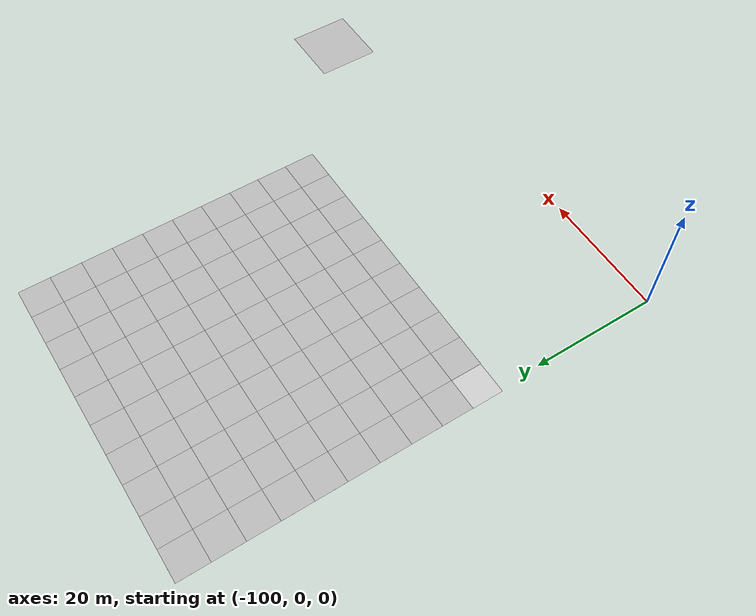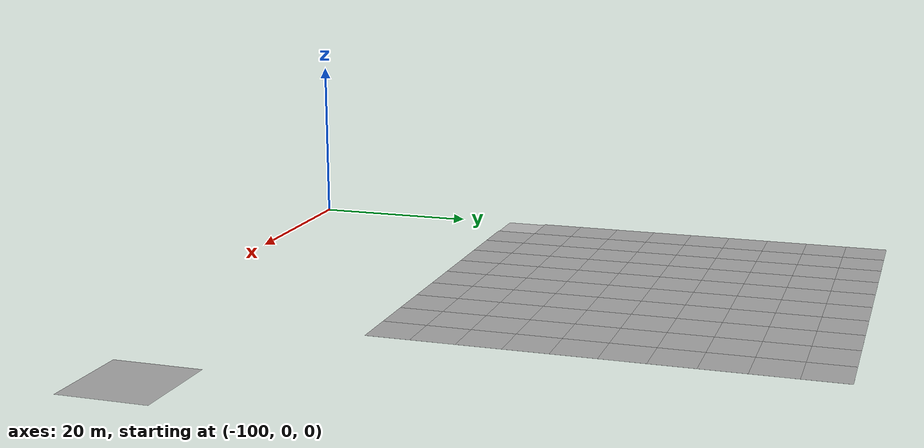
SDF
<sdf version="1.4">
 <world name="default">
  <model name="pavement_plane_5">
   <static>1</static>
   <link name="link">
    <collision name="collision">
     <geometry><plane><normal>0 0 1</normal><size>50 50</size></plane></geometry>
     <surface><friction><ode><mu>100</mu><mu2>50</mu2></ode></friction></surface>
    </collision>
    <visual name="visual_0">
     <pose>-25 -25 0 0 -0 0</pose>
     <cast_shadows>0</cast_shadows>
     <geometry><plane><normal>0 0 1</normal><size>5 5</size></plane></geometry>
     <material>
      <script>
       <uri>model://pavement_plane/materials/scripts</uri>
       <uri>model://pavement_plane/materials/textures</uri>
       <name>vrc/pavement</name>
      </script>
     </material>
    </visual>
    <visual name="visual_1">
     <pose>-20 -25 0 0 -0 0</pose>
     <cast_shadows>0</cast_shadows>
     <geometry><plane><normal>0 0 1</normal><size>5 5</size></plane></geometry>
     <material>
      <script>
       <uri>model://pavement_plane/materials/scripts</uri>
       <uri>model://pavement_plane/materials/textures</uri>
       <name>vrc/pavement</name>
      </script>
     </material>
    </visual>
    <visual name="visual_2">
     <pose>-15 -25 0 0 -0 0</pose>
     <cast_shadows>0</cast_shadows>
     <geometry><plane><normal>0 0 1</normal><size>5 5</size></plane></geometry>
     <material>
      <script>
       <uri>model://pavement_plane/materials/scripts</uri>
       <uri>model://pavement_plane/materials/textures</uri>
       <name>vrc/pavement</name>
      </script>
     </material>
    </visual>
    <visual name="visual_3">
     <pose>-10 -25 0 0 -0 0</pose>
     <cast_shadows>0</cast_shadows>
     <geometry><plane><normal>0 0 1</normal><size>5 5</size></plane></geometry>
     <material>
      <script>
       <uri>model://pavement_plane/materials/scripts</uri>
       <uri>model://pavement_plane/materials/textures</uri>
       <name>vrc/pavement</name>
      </script>
     </material>
    </visual>
    <visual name="visual_4">
     <pose>-5 -25 0 0 -0 0</pose>
     <cast_shadows>0</cast_shadows>
     <geometry><plane><normal>0 0 1</normal><size>5 5</size></plane></geometry>
     <material>
      <script>
       <uri>model://pavement_plane/materials/scripts</uri>
       <uri>model://pavement_plane/materials/textures</uri>
       <name>vrc/pavement</name>
      </script>
     </material>
    </visual>
    <visual name="visual_5">
     <pose>0 -25 0 0 -0 0</pose>
     <cast_shadows>0</cast_shadows>
     <geometry><plane><normal>0 0 1</normal><size>5 5</size></plane></geometry>
     <material>
      <script>
       <uri>model://pavement_plane/materials/scripts</uri>
       <uri>model://pavement_plane/materials/textures</uri>
       <name>vrc/pavement</name>
      </script>
     </material>
    </visual>
    <visual name="visual_6">
     <pose>5 -25 0 0 -0 0</pose>
     <cast_shadows>0</cast_shadows>
     <geometry><plane><normal>0 0 1</normal><size>5 5</size></plane></geometry>
     <material>
      <script>
       <uri>model://pavement_plane/materials/scripts</uri>
       <uri>model://pavement_plane/materials/textures</uri>
       <name>vrc/pavement</name>
      </script>
     </material>
    </visual>
    <visual name="visual_7">
     <pose>10 -25 0 0 -0 0</pose>
     <cast_shadows>0</cast_shadows>
     <geometry><plane><normal>0 0 1</normal><size>5 5</size></plane></geometry>
     <material>
      <script>
       <uri>model://pavement_plane/materials/scripts</uri>
       <uri>model://pavement_plane/materials/textures</uri>
       <name>vrc/pavement</name>
      </script>
     </material>
    </visual>
    <visual name="visual_8">
     <pose>15 -25 0 0 -0 0</pose>
     <cast_shadows>0</cast_shadows>
     <geometry><plane><normal>0 0 1</normal><size>5 5</size></plane></geometry>
     <material>
      <script>
       <uri>model://pavement_plane/materials/scripts</uri>
       <uri>model://pavement_plane/materials/textures</uri>
       <name>vrc/pavement</name>
      </script>
     </material>
    </visual>
    <visual name="visual_9">
     <pose>20 -25 0 0 -0 0</pose>
     <cast_shadows>0</cast_shadows>
     <geometry><plane><normal>0 0 1</normal><size>5 5</size></plane></geometry>
     <material>
      <script>
       <uri>model://pavement_plane/materials/scripts</uri>
       <uri>model://pavement_plane/materials/textures</uri>
       <name>vrc/pavement</name>
      </script>
     </material>
    </visual>
    <visual name="visual_10">
     <pose>-25 -20 0 0 -0 0</pose>
     <cast_shadows>0</cast_shadows>
     <geometry><plane><normal>0 0 1</normal><size>5 5</size></plane></geometry>
     <material>
      <script>
       <uri>model://pavement_plane/materials/scripts</uri>
       <uri>model://pavement_plane/materials/textures</uri>
       <name>vrc/pavement</name>
      </script>
     </material>
    </visual>
    <visual name="visual_11">
     <pose>-20 -20 0 0 -0 0</pose>
     <cast_shadows>0</cast_shadows>
     <geometry><plane><normal>0 0 1</normal><size>5 5</size></plane></geometry>
     <material>
      <script>
       <uri>model://pavement_plane/materials/scripts</uri>
       <uri>model://pavement_plane/materials/textures</uri>
       <name>vrc/pavement</name>
      </script>
     </material>
    </visual>
    <visual name="visual_12">
     <pose>-15 -20 0 0 -0 0</pose>
     <cast_shadows>0</cast_shadows>
     <geometry><plane><normal>0 0 1</normal><size>5 5</size></plane></geometry>
     <material>
      <script>
       <uri>model://pavement_plane/materials/scripts</uri>
       <uri>model://pavement_plane/materials/textures</uri>
       <name>vrc/pavement</name>
      </script>
     </material>
    </visual>
    <visual name="visual_13">
     <pose>-10 -20 0 0 -0 0</pose>
     <cast_shadows>0</cast_shadows>
     <geometry><plane><normal>0 0 1</normal><size>5 5</size></plane></geometry>
     <material>
      <script>
       <uri>model://pavement_plane/materials/scripts</uri>
       <uri>model://pavement_plane/materials/textures</uri>
       <name>vrc/pavement</name>
      </script>
     </material>
    </visual>
    <visual name="visual_14">
     <pose>-5 -20 0 0 -0 0</pose>
     <cast_shadows>0</cast_shadows>
     <geometry><plane><normal>0 0 1</normal><size>5 5</size></plane></geometry>
     <material>
      <script>
       <uri>model://pavement_plane/materials/scripts</uri>
       <uri>model://pavement_plane/materials/textures</uri>
       <name>vrc/pavement</name>
      </script>
     </material>
    </visual>
    <visual name="visual_15">
     <pose>0 -20 0 0 -0 0</pose>
     <cast_shadows>0</cast_shadows>
     <geometry><plane><normal>0 0 1</normal><size>5 5</size></plane></geometry>
     <material>
      <script>
       <uri>model://pavement_plane/materials/scripts</uri>
       <uri>model://pavement_plane/materials/textures</uri>
       <name>vrc/pavement</name>
      </script>
     </material>
    </visual>
    <visual name="visual_16">
     <pose>5 -20 0 0 -0 0</pose>
     <cast_shadows>0</cast_shadows>
     <geometry><plane><normal>0 0 1</normal><size>5 5</size></plane></geometry>
     <material>
      <script>
       <uri>model://pavement_plane/materials/scripts</uri>
       <uri>model://pavement_plane/materials/textures</uri>
       <name>vrc/pavement</name>
      </script>
     </material>
    </visual>
    <visual name="visual_17">
     <pose>10 -20 0 0 -0 0</pose>
     <cast_shadows>0</cast_shadows>
     <geometry><plane><normal>0 0 1</normal><size>5 5</size></plane></geometry>
     <material>
      <script>
       <uri>model://pavement_plane/materials/scripts</uri>
       <uri>model://pavement_plane/materials/textures</uri>
       <name>vrc/pavement</name>
      </script>
     </material>
    </visual>
    <visual name="visual_18">
     <pose>15 -20 0 0 -0 0</pose>
     <cast_shadows>0</cast_shadows>
     <geometry><plane><normal>0 0 1</normal><size>5 5</size></plane></geometry>
     <material>
      <script>
       <uri>model://pavement_plane/materials/scripts</uri>
       <uri>model://pavement_plane/materials/textures</uri>
       <name>vrc/pavement</name>
      </script>
     </material>
    </visual>
    <visual name="visual_19">
     <pose>20 -20 0 0 -0 0</pose>
     <cast_shadows>0</cast_shadows>
     <geometry><plane><normal>0 0 1</normal><size>5 5</size></plane></geometry>
     <material>
      <script>
       <uri>model://pavement_plane/materials/scripts</uri>
       <uri>model://pavement_plane/materials/textures</uri>
       <name>vrc/pavement</name>
      </script>
     </material>
    </visual>
    <visual name="visual_20">
     <pose>-25 -15 0 0 -0 0</pose>
     <cast_shadows>0</cast_shadows>
     <geometry><plane><normal>0 0 1</normal><size>5 5</size></plane></geometry>
     <material>
      <script>
       <uri>model://pavement_plane/materials/scripts</uri>
       <uri>model://pavement_plane/materials/textures</uri>
       <name>vrc/pavement</name>
      </script>
     </material>
    </visual>
    <visual name="visual_21">
     <pose>-20 -15 0 0 -0 0</pose>
     <cast_shadows>0</cast_shadows>
     <geometry><plane><normal>0 0 1</normal><size>5 5</size></plane></geometry>
     <material>
      <script>
       <uri>model://pavement_plane/materials/scripts</uri>
       <uri>model://pavement_plane/materials/textures</uri>
       <name>vrc/pavement</name>
      </script>
     </material>
    </visual>
    <visual name="visual_22">
     <pose>-15 -15 0 0 -0 0</pose>
     <cast_shadows>0</cast_shadows>
     <geometry><plane><normal>0 0 1</normal><size>5 5</size></plane></geometry>
     <material>
      <script>
       <uri>model://pavement_plane/materials/scripts</uri>
       <uri>model://pavement_plane/materials/textures</uri>
       <name>vrc/pavement</name>
      </script>
     </material>
    </visual>
    <visual name="visual_23">
     <pose>-10 -15 0 0 -0 0</pose>
     <cast_shadows>0</cast_shadows>
     <geometry><plane><normal>0 0 1</normal><size>5 5</size></plane></geometry>
     <material>
      <script>
       <uri>model://pavement_plane/materials/scripts</uri>
       <uri>model://pavement_plane/materials/textures</uri>
       <name>vrc/pavement</name>
      </script>
     </material>
    </visual>
    <visual name="visual_24">
     <pose>-5 -15 0 0 -0 0</pose>
     <cast_shadows>0</cast_shadows>
     <geometry><plane><normal>0 0 1</normal><size>5 5</size></plane></geometry>
     <material>
      <script>
       <uri>model://pavement_plane/materials/scripts</uri>
       <uri>model://pavement_plane/materials/textures</uri>
       <name>vrc/pavement</name>
      </script>
     </material>
    </visual>
    <visual name="visual_25">
     <pose>0 -15 0 0 -0 0</pose>
     <cast_shadows>0</cast_shadows>
     <geometry><plane><normal>0 0 1</normal><size>5 5</size></plane></geometry>
     <material>
      <script>
       <uri>model://pavement_plane/materials/scripts</uri>
       <uri>model://pavement_plane/materials/textures</uri>
       <name>vrc/pavement</name>
      </script>
     </material>
    </visual>
    <visual name="visual_26">
     <pose>5 -15 0 0 -0 0</pose>
     <cast_shadows>0</cast_shadows>
     <geometry><plane><normal>0 0 1</normal><size>5 5</size></plane></geometry>
     <material>
      <script>
       <uri>model://pavement_plane/materials/scripts</uri>
       <uri>model://pavement_plane/materials/textures</uri>
       <name>vrc/pavement</name>
      </script>
     </material>
    </visual>
    <visual name="visual_27">
     <pose>10 -15 0 0 -0 0</pose>
     <cast_shadows>0</cast_shadows>
     <geometry><plane><normal>0 0 1</normal><size>5 5</size></plane></geometry>
     <material>
      <script>
       <uri>model://pavement_plane/materials/scripts</uri>
       <uri>model://pavement_plane/materials/textures</uri>
       <name>vrc/pavement</name>
      </script>
     </material>
    </visual>
    <visual name="visual_28">
     <pose>15 -15 0 0 -0 0</pose>
     <cast_shadows>0</cast_shadows>
     <geometry><plane><normal>0 0 1</normal><size>5 5</size></plane></geometry>
     <material>
      <script>
       <uri>model://pavement_plane/materials/scripts</uri>
       <uri>model://pavement_plane/materials/textures</uri>
       <name>vrc/pavement</name>
      </script>
     </material>
    </visual>
    <visual name="visual_29">
     <pose>20 -15 0 0 -0 0</pose>
     <cast_shadows>0</cast_shadows>
     <geometry><plane><normal>0 0 1</normal><size>5 5</size></plane></geometry>
     <material>
      <script>
       <uri>model://pavement_plane/materials/scripts</uri>
       <uri>model://pavement_plane/materials/textures</uri>
       <name>vrc/pavement</name>
      </script>
     </material>
    </visual>
    <visual name="visual_30">
     <pose>-25 -10 0 0 -0 0</pose>
     <cast_shadows>0</cast_shadows>
     <geometry><plane><normal>0 0 1</normal><size>5 5</size></plane></geometry>
     <material>
      <script>
       <uri>model://pavement_plane/materials/scripts</uri>
       <uri>model://pavement_plane/materials/textures</uri>
       <name>vrc/pavement</name>
      </script>
     </material>
    </visual>
    <visual name="visual_31">
     <pose>-20 -10 0 0 -0 0</pose>
     <cast_shadows>0</cast_shadows>
     <geometry><plane><normal>0 0 1</normal><size>5 5</size></plane></geometry>
     <material>
      <script>
       <uri>model://pavement_plane/materials/scripts</uri>
       <uri>model://pavement_plane/materials/textures</uri>
       <name>vrc/pavement</name>
      </script>
     </material>
    </visual>
    <visual name="visual_32">
     <pose>-15 -10 0 0 -0 0</pose>
     <cast_shadows>0</cast_shadows>
     <geometry><plane><normal>0 0 1</normal><size>5 5</size></plane></geometry>
     <material>
      <script>
       <uri>model://pavement_plane/materials/scripts</uri>
       <uri>model://pavement_plane/materials/textures</uri>
       <name>vrc/pavement</name>
      </script>
     </material>
    </visual>
    <visual name="visual_33">
     <pose>-10 -10 0 0 -0 0</pose>
     <cast_shadows>0</cast_shadows>
     <geometry><plane><normal>0 0 1</normal><size>5 5</size></plane></geometry>
     <material>
      <script>
       <uri>model://pavement_plane/materials/scripts</uri>
       <uri>model://pavement_plane/materials/textures</uri>
       <name>vrc/pavement</name>
      </script>
     </material>
    </visual>
    <visual name="visual_34">
     <pose>-5 -10 0 0 -0 0</pose>
     <cast_shadows>0</cast_shadows>
     <geometry><plane><normal>0 0 1</normal><size>5 5</size></plane></geometry>
     <material>
      <script>
       <uri>model://pavement_plane/materials/scripts</uri>
       <uri>model://pavement_plane/materials/textures</uri>
       <name>vrc/pavement</name>
      </script>
     </material>
    </visual>
    <visual name="visual_35">
     <pose>0 -10 0 0 -0 0</pose>
     <cast_shadows>0</cast_shadows>
     <geometry><plane><normal>0 0 1</normal><size>5 5</size></plane></geometry>
     <material>
      <script>
       <uri>model://pavement_plane/materials/scripts</uri>
       <uri>model://pavement_plane/materials/textures</uri>
       <name>vrc/pavement</name>
      </script>
     </material>
    </visual>
    <visual name="visual_36">
     <pose>5 -10 0 0 -0 0</pose>
     <cast_shadows>0</cast_shadows>
     <geometry><plane><normal>0 0 1</normal><size>5 5</size></plane></geometry>
     <material>
      <script>
       <uri>model://pavement_plane/materials/scripts</uri>
       <uri>model://pavement_plane/materials/textures</uri>
       <name>vrc/pavement</name>
      </script>
     </material>
    </visual>
    <visual name="visual_37">
     <pose>10 -10 0 0 -0 0</pose>
     <cast_shadows>0</cast_shadows>
     <geometry><plane><normal>0 0 1</normal><size>5 5</size></plane></geometry>
     <material>
      <script>
       <uri>model://pavement_plane/materials/scripts</uri>
       <uri>model://pavement_plane/materials/textures</uri>
       <name>vrc/pavement</name>
      </script>
     </material>
    </visual>
    <visual name="visual_38">
     <pose>15 -10 0 0 -0 0</pose>
     <cast_shadows>0</cast_shadows>
     <geometry><plane><normal>0 0 1</normal><size>5 5</size></plane></geometry>
     <material>
      <script>
       <uri>model://pavement_plane/materials/scripts</uri>
       <uri>model://pavement_plane/materials/textures</uri>
       <name>vrc/pavement</name>
      </script>
     </material>
    </visual>
    <visual name="visual_39">
     <pose>20 -10 0 0 -0 0</pose>
     <cast_shadows>0</cast_shadows>
     <geometry><plane><normal>0 0 1</normal><size>5 5</size></plane></geometry>
     <material>
      <script>
       <uri>model://pavement_plane/materials/scripts</uri>
       <uri>model://pavement_plane/materials/textures</uri>
       <name>vrc/pavement</name>
      </script>
     </material>
    </visual>
    <visual name="visual_40">
     <pose>-25 -5 0 0 -0 0</pose>
     <cast_shadows>0</cast_shadows>
     <geometry><plane><normal>0 0 1</normal><size>5 5</size></plane></geometry>
     <material>
      <script>
       <uri>model://pavement_plane/materials/scripts</uri>
       <uri>model://pavement_plane/materials/textures</uri>
       <name>vrc/pavement</name>
      </script>
     </material>
    </visual>
    <visual name="visual_41">
     <pose>-20 -5 0 0 -0 0</pose>
     <cast_shadows>0</cast_shadows>
     <geometry><plane><normal>0 0 1</normal><size>5 5</size></plane></geometry>
     <material>
      <script>
       <uri>model://pavement_plane/materials/scripts</uri>
       <uri>model://pavement_plane/materials/textures</uri>
       <name>vrc/pavement</name>
      </script>
     </material>
    </visual>
    <visual name="visual_42">
     <pose>-15 -5 0 0 -0 0</pose>
     <cast_shadows>0</cast_shadows>
     <geometry><plane><normal>0 0 1</normal><size>5 5</size></plane></geometry>
     <material>
      <script>
       <uri>model://pavement_plane/materials/scripts</uri>
       <uri>model://pavement_plane/materials/textures</uri>
       <name>vrc/pavement</name>
      </script>
     </material>
    </visual>
    <visual name="visual_43">
     <pose>-10 -5 0 0 -0 0</pose>
     <cast_shadows>0</cast_shadows>
     <geometry><plane><normal>0 0 1</normal><size>5 5</size></plane></geometry>
     <material>
      <script>
       <uri>model://pavement_plane/materials/scripts</uri>
       <uri>model://pavement_plane/materials/textures</uri>
       <name>vrc/pavement</name>
      </script>
     </material>
    </visual>
    <visual name="visual_44">
     <pose>-5 -5 0 0 -0 0</pose>
     <cast_shadows>0</cast_shadows>
     <geometry><plane><normal>0 0 1</normal><size>5 5</size></plane></geometry>
     <material>
      <script>
       <uri>model://pavement_plane/materials/scripts</uri>
       <uri>model://pavement_plane/materials/textures</uri>
       <name>vrc/pavement</name>
      </script>
     </material>
    </visual>
    <visual name="visual_45">
     <pose>0 -5 0 0 -0 0</pose>
     <cast_shadows>0</cast_shadows>
     <geometry><plane><normal>0 0 1</normal><size>5 5</size></plane></geometry>
     <material>
      <script>
       <uri>model://pavement_plane/materials/scripts</uri>
       <uri>model://pavement_plane/materials/textures</uri>
       <name>vrc/pavement</name>
      </script>
     </material>
    </visual>
    <visual name="visual_46">
     <pose>5 -5 0 0 -0 0</pose>
     <cast_shadows>0</cast_shadows>
     <geometry><plane><normal>0 0 1</normal><size>5 5</size></plane></geometry>
     <material>
      <script>
       <uri>model://pavement_plane/materials/scripts</uri>
       <uri>model://pavement_plane/materials/textures</uri>
       <name>vrc/pavement</name>
      </script>
     </material>
    </visual>
    <visual name="visual_47">
     <pose>10 -5 0 0 -0 0</pose>
     <cast_shadows>0</cast_shadows>
     <geometry><plane><normal>0 0 1</normal><size>5 5</size></plane></geometry>
     <material>
      <script>
       <uri>model://pavement_plane/materials/scripts</uri>
       <uri>model://pavement_plane/materials/textures</uri>
       <name>vrc/pavement</name>
      </script>
     </material>
    </visual>
    <visual name="visual_48">
     <pose>15 -5 0 0 -0 0</pose>
     <cast_shadows>0</cast_shadows>
     <geometry><plane><normal>0 0 1</normal><size>5 5</size></plane></geometry>
     <material>
      <script>
       <uri>model://pavement_plane/materials/scripts</uri>
       <uri>model://pavement_plane/materials/textures</uri>
       <name>vrc/pavement</name>
      </script>
     </material>
    </visual>
    <visual name="visual_49">
     <pose>20 -5 0 0 -0 0</pose>
     <cast_shadows>0</cast_shadows>
     <geometry><plane><normal>0 0 1</normal><size>5 5</size></plane></geometry>
     <material>
      <script>
       <uri>model://pavement_plane/materials/scripts</uri>
       <uri>model://pavement_plane/materials/textures</uri>
       <name>vrc/pavement</name>
      </script>
     </material>
    </visual>
    <visual name="visual_50">
     <pose>-25 0 0 0 -0 0</pose>
     <cast_shadows>0</cast_shadows>
     <geometry><plane><normal>0 0 1</normal><size>5 5</size></plane></geometry>
     <material>
      <script>
       <uri>model://pavement_plane/materials/scripts</uri>
       <uri>model://pavement_plane/materials/textures</uri>
       <name>vrc/pavement</name>
      </script>
     </material>
    </visual>
    <visual name="visual_51">
     <pose>-20 0 0 0 -0 0</pose>
     <cast_shadows>0</cast_shadows>
     <geometry><plane><normal>0 0 1</normal><size>5 5</size></plane></geometry>
     <material>
      <script>
       <uri>model://pavement_plane/materials/scripts</uri>
       <uri>model://pavement_plane/materials/textures</uri>
       <name>vrc/pavement</name>
      </script>
     </material>
    </visual>
    <visual name="visual_52">
     <pose>-15 0 0 0 -0 0</pose>
     <cast_shadows>0</cast_shadows>
     <geometry><plane><normal>0 0 1</normal><size>5 5</size></plane></geometry>
     <material>
      <script>
       <uri>model://pavement_plane/materials/scripts</uri>
       <uri>model://pavement_plane/materials/textures</uri>
       <name>vrc/pavement</name>
      </script>
     </material>
    </visual>
    <visual name="visual_53">
     <pose>-10 0 0 0 -0 0</pose>
     <cast_shadows>0</cast_shadows>
     <geometry><plane><normal>0 0 1</normal><size>5 5</size></plane></geometry>
     <material>
      <script>
       <uri>model://pavement_plane/materials/scripts</uri>
       <uri>model://pavement_plane/materials/textures</uri>
       <name>vrc/pavement</name>
      </script>
     </material>
    </visual>
    <visual name="visual_54">
     <pose>-5 0 0 0 -0 0</pose>
     <cast_shadows>0</cast_shadows>
     <geometry><plane><normal>0 0 1</normal><size>5 5</size></plane></geometry>
     <material>
      <script>
       <uri>model://pavement_plane/materials/scripts</uri>
       <uri>model://pavement_plane/materials/textures</uri>
       <name>vrc/pavement</name>
      </script>
     </material>
    </visual>
    <visual name="visual_55">
     <cast_shadows>0</cast_shadows>
     <geometry><plane><normal>0 0 1</normal><size>5 5</size></plane></geometry>
     <material>
      <script>
       <uri>model://pavement_plane/materials/scripts</uri>
       <uri>model://pavement_plane/materials/textures</uri>
       <name>vrc/pavement</name>
      </script>
     </material>
    </visual>
    <visual name="visual_56">
     <pose>5 0 0 0 -0 0</pose>
     <cast_shadows>0</cast_shadows>
     <geometry><plane><normal>0 0 1</normal><size>5 5</size></plane></geometry>
     <material>
      <script>
       <uri>model://pavement_plane/materials/scripts</uri>
       <uri>model://pavement_plane/materials/textures</uri>
       <name>vrc/pavement</name>
      </script>
     </material>
    </visual>
    <visual name="visual_57">
     <pose>10 0 0 0 -0 0</pose>
     <cast_shadows>0</cast_shadows>
     <geometry><plane><normal>0 0 1</normal><size>5 5</size></plane></geometry>
     <material>
      <script>
       <uri>model://pavement_plane/materials/scripts</uri>
       <uri>model://pavement_plane/materials/textures</uri>
       <name>vrc/pavement</name>
      </script>
     </material>
    </visual>
    <visual name="visual_58">
     <pose>15 0 0 0 -0 0</pose>
     <cast_shadows>0</cast_shadows>
     <geometry><plane><normal>0 0 1</normal><size>5 5</size></plane></geometry>
     <material>
      <script>
       <uri>model://pavement_plane/materials/scripts</uri>
       <uri>model://pavement_plane/materials/textures</uri>
       <name>vrc/pavement</name>
      </script>
     </material>
    </visual>
    <visual name="visual_59">
     <pose>20 0 0 0 -0 0</pose>
     <cast_shadows>0</cast_shadows>
     <geometry><plane><normal>0 0 1</normal><size>5 5</size></plane></geometry>
     <material>
      <script>
       <uri>model://pavement_plane/materials/scripts</uri>
       <uri>model://pavement_plane/materials/textures</uri>
       <name>vrc/pavement</name>
      </script>
     </material>
    </visual>
    <visual name="visual_60">
     <pose>-25 5 0 0 -0 0</pose>
     <cast_shadows>0</cast_shadows>
     <geometry><plane><normal>0 0 1</normal><size>5 5</size></plane></geometry>
     <material>
      <script>
       <uri>model://pavement_plane/materials/scripts</uri>
       <uri>model://pavement_plane/materials/textures</uri>
       <name>vrc/pavement</name>
      </script>
     </material>
    </visual>
    <visual name="visual_61">
     <pose>-20 5 0 0 -0 0</pose>
     <cast_shadows>0</cast_shadows>
     <geometry><plane><normal>0 0 1</normal><size>5 5</size></plane></geometry>
     <material>
      <script>
       <uri>model://pavement_plane/materials/scripts</uri>
       <uri>model://pavement_plane/materials/textures</uri>
       <name>vrc/pavement</name>
      </script>
     </material>
    </visual>
    <visual name="visual_62">
     <pose>-15 5 0 0 -0 0</pose>
     <cast_shadows>0</cast_shadows>
     <geometry><plane><normal>0 0 1</normal><size>5 5</size></plane></geometry>
     <material>
      <script>
       <uri>model://pavement_plane/materials/scripts</uri>
       <uri>model://pavement_plane/materials/textures</uri>
       <name>vrc/pavement</name>
      </script>
     </material>
    </visual>
    <visual name="visual_63">
     <pose>-10 5 0 0 -0 0</pose>
     <cast_shadows>0</cast_shadows>
     <geometry><plane><normal>0 0 1</normal><size>5 5</size></plane></geometry>
     <material>
      <script>
       <uri>model://pavement_plane/materials/scripts</uri>
       <uri>model://pavement_plane/materials/textures</uri>
       <name>vrc/pavement</name>
      </script>
     </material>
    </visual>
    <visual name="visual_64">
     <pose>-5 5 0 0 -0 0</pose>
     <cast_shadows>0</cast_shadows>
     <geometry><plane><normal>0 0 1</normal><size>5 5</size></plane></geometry>
     <material>
      <script>
       <uri>model://pavement_plane/materials/scripts</uri>
       <uri>model://pavement_plane/materials/textures</uri>
       <name>vrc/pavement</name>
      </script>
     </material>
    </visual>
    <visual name="visual_65">
     <pose>0 5 0 0 -0 0</pose>
     <cast_shadows>0</cast_shadows>
     <geometry><plane><normal>0 0 1</normal><size>5 5</size></plane></geometry>
     <material>
      <script>
       <uri>model://pavement_plane/materials/scripts</uri>
       <uri>model://pavement_plane/materials/textures</uri>
       <name>vrc/pavement</name>
      </script>
     </material>
    </visual>
    <visual name="visual_66">
     <pose>5 5 0 0 -0 0</pose>
     <cast_shadows>0</cast_shadows>
     <geometry><plane><normal>0 0 1</normal><size>5 5</size></plane></geometry>
     <material>
      <script>
       <uri>model://pavement_plane/materials/scripts</uri>
       <uri>model://pavement_plane/materials/textures</uri>
       <name>vrc/pavement</name>
      </script>
     </material>
    </visual>
    <visual name="visual_67">
     <pose>10 5 0 0 -0 0</pose>
     <cast_shadows>0</cast_shadows>
     <geometry><plane><normal>0 0 1</normal><size>5 5</size></plane></geometry>
     <material>
      <script>
       <uri>model://pavement_plane/materials/scripts</uri>
       <uri>model://pavement_plane/materials/textures</uri>
       <name>vrc/pavement</name>
      </script>
     </material>
    </visual>
    <visual name="visual_68">
     <pose>15 5 0 0 -0 0</pose>
     <cast_shadows>0</cast_shadows>
     <geometry><plane><normal>0 0 1</normal><size>5 5</size></plane></geometry>
     <material>
      <script>
       <uri>model://pavement_plane/materials/scripts</uri>
       <uri>model://pavement_plane/materials/textures</uri>
       <name>vrc/pavement</name>
      </script>
     </material>
    </visual>
    <visual name="visual_69">
     <pose>20 5 0 0 -0 0</pose>
     <cast_shadows>0</cast_shadows>
     <geometry><plane><normal>0 0 1</normal><size>5 5</size></plane></geometry>
     <material>
      <script>
       <uri>model://pavement_plane/materials/scripts</uri>
       <uri>model://pavement_plane/materials/textures</uri>
       <name>vrc/pavement</name>
      </script>
     </material>
    </visual>
    <visual name="visual_70">
     <pose>-25 10 0 0 -0 0</pose>
     <cast_shadows>0</cast_shadows>
     <geometry><plane><normal>0 0 1</normal><size>5 5</size></plane></geometry>
     <material>
      <script>
       <uri>model://pavement_plane/materials/scripts</uri>
       <uri>model://pavement_plane/materials/textures</uri>
       <name>vrc/pavement</name>
      </script>
     </material>
    </visual>
    <visual name="visual_71">
     <pose>-20 10 0 0 -0 0</pose>
     <cast_shadows>0</cast_shadows>
     <geometry><plane><normal>0 0 1</normal><size>5 5</size></plane></geometry>
     <material>
      <script>
       <uri>model://pavement_plane/materials/scripts</uri>
       <uri>model://pavement_plane/materials/textures</uri>
       <name>vrc/pavement</name>
      </script>
     </material>
    </visual>
    <visual name="visual_72">
     <pose>-15 10 0 0 -0 0</pose>
     <cast_shadows>0</cast_shadows>
     <geometry><plane><normal>0 0 1</normal><size>5 5</size></plane></geometry>
     <material>
      <script>
       <uri>model://pavement_plane/materials/scripts</uri>
       <uri>model://pavement_plane/materials/textures</uri>
       <name>vrc/pavement</name>
      </script>
     </material>
    </visual>
    <visual name="visual_73">
     <pose>-10 10 0 0 -0 0</pose>
     <cast_shadows>0</cast_shadows>
     <geometry><plane><normal>0 0 1</normal><size>5 5</size></plane></geometry>
     <material>
      <script>
       <uri>model://pavement_plane/materials/scripts</uri>
       <uri>model://pavement_plane/materials/textures</uri>
       <name>vrc/pavement</name>
      </script>
     </material>
    </visual>
    <visual name="visual_74">
     <pose>-5 10 0 0 -0 0</pose>
     <cast_shadows>0</cast_shadows>
     <geometry><plane><normal>0 0 1</normal><size>5 5</size></plane></geometry>
     <material>
      <script>
       <uri>model://pavement_plane/materials/scripts</uri>
       <uri>model://pavement_plane/materials/textures</uri>
       <name>vrc/pavement</name>
      </script>
     </material>
    </visual>
    <visual name="visual_75">
     <pose>0 10 0 0 -0 0</pose>
     <cast_shadows>0</cast_shadows>
     <geometry><plane><normal>0 0 1</normal><size>5 5</size></plane></geometry>
     <material>
      <script>
       <uri>model://pavement_plane/materials/scripts</uri>
       <uri>model://pavement_plane/materials/textures</uri>
       <name>vrc/pavement</name>
      </script>
     </material>
    </visual>
    <visual name="visual_76">
     <pose>5 10 0 0 -0 0</pose>
     <cast_shadows>0</cast_shadows>
     <geometry><plane><normal>0 0 1</normal><size>5 5</size></plane></geometry>
     <material>
      <script>
       <uri>model://pavement_plane/materials/scripts</uri>
       <uri>model://pavement_plane/materials/textures</uri>
       <name>vrc/pavement</name>
      </script>
     </material>
    </visual>
    <visual name="visual_77">
     <pose>10 10 0 0 -0 0</pose>
     <cast_shadows>0</cast_shadows>
     <geometry><plane><normal>0 0 1</normal><size>5 5</size></plane></geometry>
     <material>
      <script>
       <uri>model://pavement_plane/materials/scripts</uri>
       <uri>model://pavement_plane/materials/textures</uri>
       <name>vrc/pavement</name>
      </script>
     </material>
    </visual>
    <visual name="visual_78">
     <pose>15 10 0 0 -0 0</pose>
     <cast_shadows>0</cast_shadows>
     <geometry><plane><normal>0 0 1</normal><size>5 5</size></plane></geometry>
     <material>
      <script>
       <uri>model://pavement_plane/materials/scripts</uri>
       <uri>model://pavement_plane/materials/textures</uri>
       <name>vrc/pavement</name>
      </script>
     </material>
    </visual>
    <visual name="visual_79">
     <pose>20 10 0 0 -0 0</pose>
     <cast_shadows>0</cast_shadows>
     <geometry><plane><normal>0 0 1</normal><size>5 5</size></plane></geometry>
     <material>
      <script>
       <uri>model://pavement_plane/materials/scripts</uri>
       <uri>model://pavement_plane/materials/textures</uri>
       <name>vrc/pavement</name>
      </script>
     </material>
    </visual>
    <visual name="visual_80">
     <pose>-25 15 0 0 -0 0</pose>
     <cast_shadows>0</cast_shadows>
     <geometry><plane><normal>0 0 1</normal><size>5 5</size></plane></geometry>
     <material>
      <script>
       <uri>model://pavement_plane/materials/scripts</uri>
       <uri>model://pavement_plane/materials/textures</uri>
       <name>vrc/pavement</name>
      </script>
     </material>
    </visual>
    <visual name="visual_81">
     <pose>-20 15 0 0 -0 0</pose>
     <cast_shadows>0</cast_shadows>
     <geometry><plane><normal>0 0 1</normal><size>5 5</size></plane></geometry>
     <material>
      <script>
       <uri>model://pavement_plane/materials/scripts</uri>
       <uri>model://pavement_plane/materials/textures</uri>
       <name>vrc/pavement</name>
      </script>
     </material>
    </visual>
    <visual name="visual_82">
     <pose>-15 15 0 0 -0 0</pose>
     <cast_shadows>0</cast_shadows>
     <geometry><plane><normal>0 0 1</normal><size>5 5</size></plane></geometry>
     <material>
      <script>
       <uri>model://pavement_plane/materials/scripts</uri>
       <uri>model://pavement_plane/materials/textures</uri>
       <name>vrc/pavement</name>
      </script>
     </material>
    </visual>
    <visual name="visual_83">
     <pose>-10 15 0 0 -0 0</pose>
     <cast_shadows>0</cast_shadows>
     <geometry><plane><normal>0 0 1</normal><size>5 5</size></plane></geometry>
     <material>
      <script>
       <uri>model://pavement_plane/materials/scripts</uri>
       <uri>model://pavement_plane/materials/textures</uri>
       <name>vrc/pavement</name>
      </script>
     </material>
    </visual>
    <visual name="visual_84">
     <pose>-5 15 0 0 -0 0</pose>
     <cast_shadows>0</cast_shadows>
     <geometry><plane><normal>0 0 1</normal><size>5 5</size></plane></geometry>
     <material>
      <script>
       <uri>model://pavement_plane/materials/scripts</uri>
       <uri>model://pavement_plane/materials/textures</uri>
       <name>vrc/pavement</name>
      </script>
     </material>
    </visual>
    <visual name="visual_85">
     <pose>0 15 0 0 -0 0</pose>
     <cast_shadows>0</cast_shadows>
     <geometry><plane><normal>0 0 1</normal><size>5 5</size></plane></geometry>
     <material>
      <script>
       <uri>model://pavement_plane/materials/scripts</uri>
       <uri>model://pavement_plane/materials/textures</uri>
       <name>vrc/pavement</name>
      </script>
     </material>
    </visual>
    <visual name="visual_86">
     <pose>5 15 0 0 -0 0</pose>
     <cast_shadows>0</cast_shadows>
     <geometry><plane><normal>0 0 1</normal><size>5 5</size></plane></geometry>
     <material>
      <script>
       <uri>model://pavement_plane/materials/scripts</uri>
       <uri>model://pavement_plane/materials/textures</uri>
       <name>vrc/pavement</name>
      </script>
     </material>
    </visual>
    <visual name="visual_87">
     <pose>10 15 0 0 -0 0</pose>
     <cast_shadows>0</cast_shadows>
     <geometry><plane><normal>0 0 1</normal><size>5 5</size></plane></geometry>
     <material>
      <script>
       <uri>model://pavement_plane/materials/scripts</uri>
       <uri>model://pavement_plane/materials/textures</uri>
       <name>vrc/pavement</name>
      </script>
     </material>
    </visual>
    <visual name="visual_88">
     <pose>15 15 0 0 -0 0</pose>
     <cast_shadows>0</cast_shadows>
     <geometry><plane><normal>0 0 1</normal><size>5 5</size></plane></geometry>
     <material>
      <script>
       <uri>model://pavement_plane/materials/scripts</uri>
       <uri>model://pavement_plane/materials/textures</uri>
       <name>vrc/pavement</name>
      </script>
     </material>
    </visual>
    <visual name="visual_89">
     <pose>20 15 0 0 -0 0</pose>
     <cast_shadows>0</cast_shadows>
     <geometry><plane><normal>0 0 1</normal><size>5 5</size></plane></geometry>
     <material>
      <script>
       <uri>model://pavement_plane/materials/scripts</uri>
       <uri>model://pavement_plane/materials/textures</uri>
       <name>vrc/pavement</name>
      </script>
     </material>
    </visual>
    <visual name="visual_90">
     <pose>-25 20 0 0 -0 0</pose>
     <cast_shadows>0</cast_shadows>
     <geometry><plane><normal>0 0 1</normal><size>5 5</size></plane></geometry>
     <material>
      <script>
       <uri>model://pavement_plane/materials/scripts</uri>
       <uri>model://pavement_plane/materials/textures</uri>
       <name>vrc/pavement</name>
      </script>
     </material>
    </visual>
    <visual name="visual_91">
     <pose>-20 20 0 0 -0 0</pose>
     <cast_shadows>0</cast_shadows>
     <geometry><plane><normal>0 0 1</normal><size>5 5</size></plane></geometry>
     <material>
      <script>
       <uri>model://pavement_plane/materials/scripts</uri>
       <uri>model://pavement_plane/materials/textures</uri>
       <name>vrc/pavement</name>
      </script>
     </material>
    </visual>
    <visual name="visual_92">
     <pose>-15 20 0 0 -0 0</pose>
     <cast_shadows>0</cast_shadows>
     <geometry><plane><normal>0 0 1</normal><size>5 5</size></plane></geometry>
     <material>
      <script>
       <uri>model://pavement_plane/materials/scripts</uri>
       <uri>model://pavement_plane/materials/textures</uri>
       <name>vrc/pavement</name>
      </script>
     </material>
    </visual>
    <visual name="visual_93">
     <pose>-10 20 0 0 -0 0</pose>
     <cast_shadows>0</cast_shadows>
     <geometry><plane><normal>0 0 1</normal><size>5 5</size></plane></geometry>
     <material>
      <script>
       <uri>model://pavement_plane/materials/scripts</uri>
       <uri>model://pavement_plane/materials/textures</uri>
       <name>vrc/pavement</name>
      </script>
     </material>
    </visual>
    <visual name="visual_94">
     <pose>-5 20 0 0 -0 0</pose>
     <cast_shadows>0</cast_shadows>
     <geometry><plane><normal>0 0 1</normal><size>5 5</size></plane></geometry>
     <material>
      <script>
       <uri>model://pavement_plane/materials/scripts</uri>
       <uri>model://pavement_plane/materials/textures</uri>
       <name>vrc/pavement</name>
      </script>
     </material>
    </visual>
    <visual name="visual_95">
     <pose>0 20 0 0 -0 0</pose>
     <cast_shadows>0</cast_shadows>
     <geometry><plane><normal>0 0 1</normal><size>5 5</size></plane></geometry>
     <material>
      <script>
       <uri>model://pavement_plane/materials/scripts</uri>
       <uri>model://pavement_plane/materials/textures</uri>
       <name>vrc/pavement</name>
      </script>
     </material>
    </visual>
    <visual name="visual_96">
     <pose>5 20 0 0 -0 0</pose>
     <cast_shadows>0</cast_shadows>
     <geometry><plane><normal>0 0 1</normal><size>5 5</size></plane></geometry>
     <material>
      <script>
       <uri>model://pavement_plane/materials/scripts</uri>
       <uri>model://pavement_plane/materials/textures</uri>
       <name>vrc/pavement</name>
      </script>
     </material>
    </visual>
    <visual name="visual_97">
     <pose>10 20 0 0 -0 0</pose>
     <cast_shadows>0</cast_shadows>
     <geometry><plane><normal>0 0 1</normal><size>5 5</size></plane></geometry>
     <material>
      <script>
       <uri>model://pavement_plane/materials/scripts</uri>
       <uri>model://pavement_plane/materials/textures</uri>
       <name>vrc/pavement</name>
      </script>
     </material>
    </visual>
    <visual name="visual_98">
     <pose>15 20 0 0 -0 0</pose>
     <cast_shadows>0</cast_shadows>
     <geometry><plane><normal>0 0 1</normal><size>5 5</size></plane></geometry>
     <material>
      <script>
       <uri>model://pavement_plane/materials/scripts</uri>
       <uri>model://pavement_plane/materials/textures</uri>
       <name>vrc/pavement</name>
      </script>
     </material>
    </visual>
    <visual name="visual_99">
     <pose>20 20 0 0 -0 0</pose>
     <cast_shadows>0</cast_shadows>
     <geometry><plane><normal>0 0 1</normal><size>5 5</size></plane></geometry>
     <material>
      <script>
       <uri>model://pavement_plane/materials/scripts</uri>
       <uri>model://pavement_plane/materials/textures</uri>
       <name>vrc/pavement</name>
      </script>
     </material>
    </visual>
    <velocity_decay><linear>0</linear><angular>0</angular></velocity_decay>
   </link>
   <pose>-73 54 0 0 -0 0</pose>
  </model>
  <model name="Road_straight_20">
   <static>1</static>
   <pose>-31.5941 10.5278 0 0 -0 0</pose>
   <link name="link">
    <visual name="visual">
     <pose>0 0 0.04 0 -0 0</pose>
     <geometry>
      <mesh><uri>model://Road_straight/models/Road 01.dae</uri><scale>0.39 0.39 1</scale></mesh>
     </geometry>
    </visual>
    <velocity_decay><linear>0</linear><angular>0</angular></velocity_decay>
   </link>
  </model>
 </world>
</sdf>
